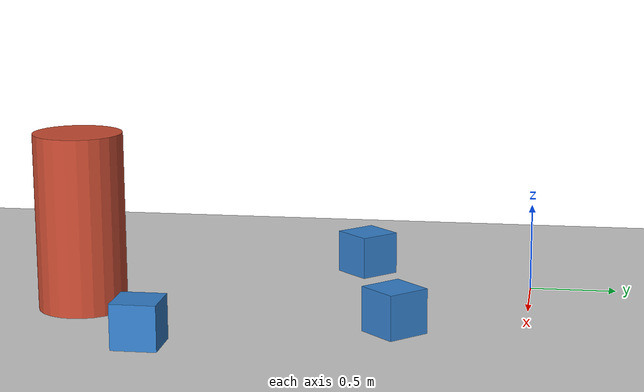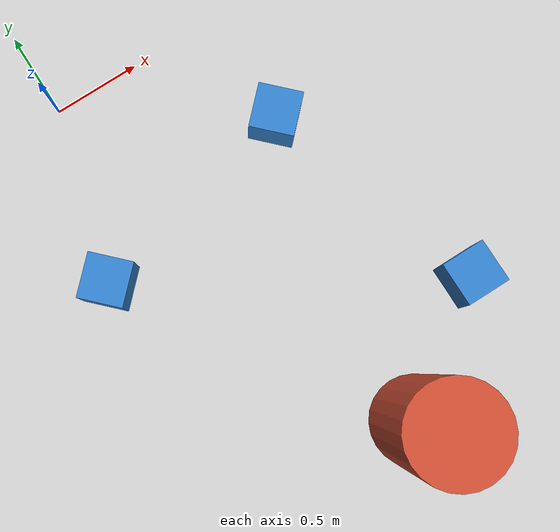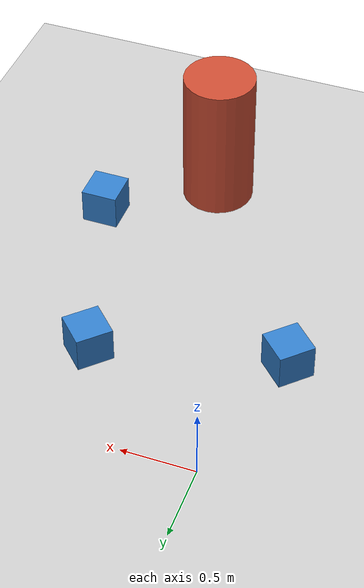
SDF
<sdf version="1.9">
 <world name="default">
  <plugin filename="gz-sim-physics-system" name="gz::sim::systems::Physics"/>
  <plugin filename="gz-sim-imu-system" name="gz::sim::systems::Imu"/>
  <plugin filename="gz-sim-sensors-system" name="gz::sim::systems::Sensors"/>
  <plugin filename="gz-sim-user-commands-system" name="gz::sim::systems::UserCommands"/>
  <plugin filename="gz-sim-scene-broadcaster-system" name="gz::sim::systems::SceneBroadcaster"/>
  <plugin filename="gz-sim-contact-system" name="gz::sim::systems::Contact"/>
  <light name="sun" type="directional">
   <pose>0 0 10 0 0 0</pose>
   <diffuse>0.8 0.8 0.8 1</diffuse>
   <specular>0.2 0.2 0.2 1</specular>
   <direction>0.5 0.1 -0.9</direction>
  </light>
  <model name="ground_plane">
   <static>true</static>
   <link name="link">
    <collision name="collision">
     <geometry><plane><normal>0 0 1</normal><size>100 100</size></plane></geometry>
    </collision>
    <visual name="visual">
     <geometry><plane><normal>0 0 1</normal><size>100 100</size></plane></geometry>
     <material>
      <ambient>0.8 0.8 0.8 1</ambient>
      <diffuse>0.8 0.8 0.8 1</diffuse>
      <specular>0.8 0.8 0.8 1</specular>
     </material>
    </visual>
   </link>
  </model>
  <model name="cube_1">
   <static>true</static>
   <pose>-0.25 -1 0.125 0 0 0.7853</pose>
   <link name="link">
    <collision name="collision"><geometry><box><size>0.25 0.25 0.25</size></box></geometry></collision>
    <visual name="visual">
     <geometry><box><size>0.25 0.25 0.25</size></box></geometry>
     <material><ambient>0.2 0.5 0.8 1</ambient><diffuse>0.2 0.5 0.8 1</diffuse></material>
    </visual>
   </link>
  </model>
  <model name="cube_2">
   <static>true</static>
   <pose>1.41131 -2 0.125 0 0 0</pose>
   <link name="link">
    <collision name="collision"><geometry><box><size>0.25 0.25 0.25</size></box></geometry></collision>
    <visual name="visual">
     <geometry><box><size>0.25 0.25 0.25</size></box></geometry>
     <material><ambient>0.2 0.5 0.8 1</ambient><diffuse>0.2 0.5 0.8 1</diffuse></material>
    </visual>
   </link>
  </model>
  <model name="cube_3">
   <static>true</static>
   <pose>1 -0.7 0.125 0 0 0.7854</pose>
   <link name="link">
    <collision name="collision"><geometry><box><size>0.25 0.25 0.25</size></box></geometry></collision>
    <visual name="visual">
     <geometry><box><size>0.25 0.25 0.25</size></box></geometry>
     <material><ambient>0.2 0.5 0.8 1</ambient><diffuse>0.2 0.5 0.8 1</diffuse></material>
    </visual>
   </link>
  </model>
  <model name="bucket">
   <static>true</static>
   <pose>0.75 -2.5 0.5 0 0 0</pose>
   <link name="link">
    <collision name="collision">
     <geometry><cylinder><radius>0.25</radius><length>1.0</length></cylinder></geometry>
    </collision>
    <visual name="visual">
     <geometry><cylinder><radius>0.25</radius><length>1.0</length></cylinder></geometry>
     <material><ambient>0.8 0.3 0.2 1</ambient><diffuse>0.8 0.3 0.2 1</diffuse></material>
    </visual>
   </link>
  </model>
  <gravity>0 0 -9.8</gravity>
 </world>
</sdf>
